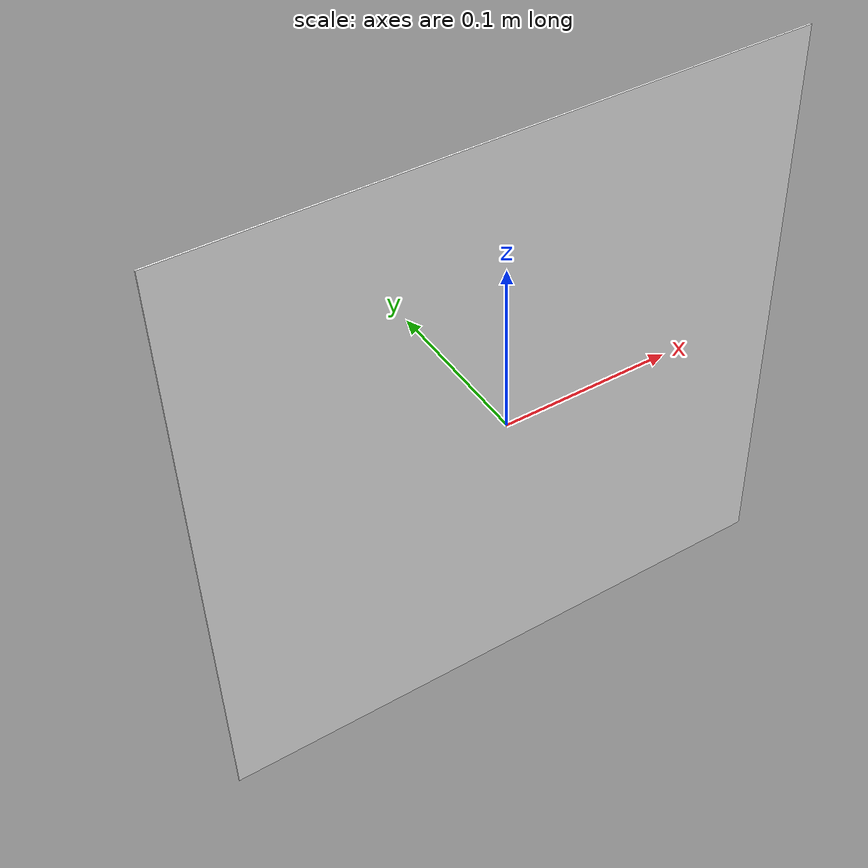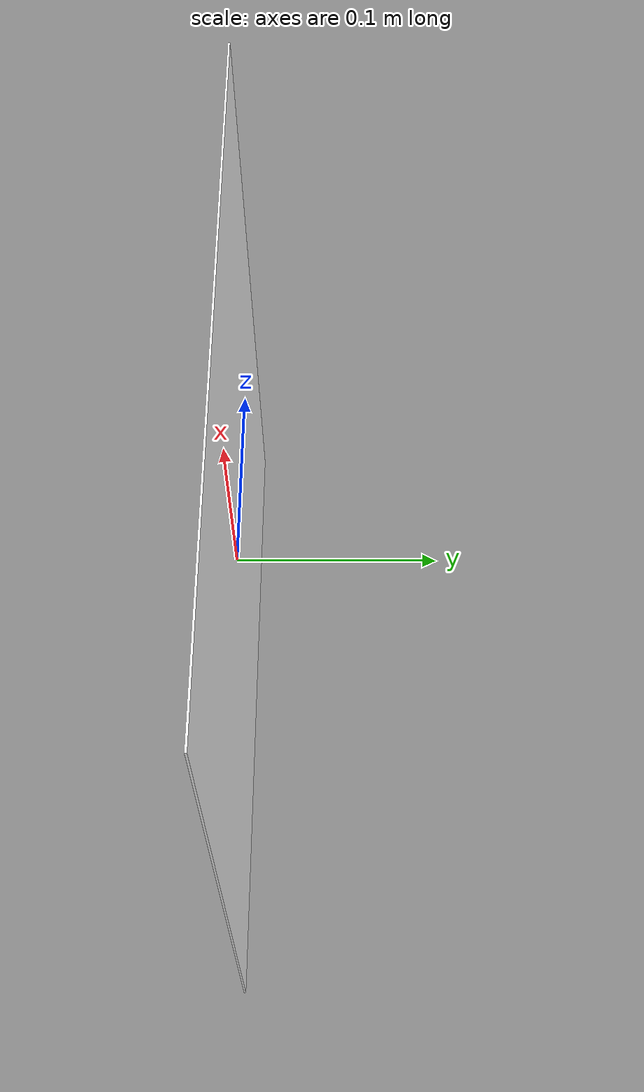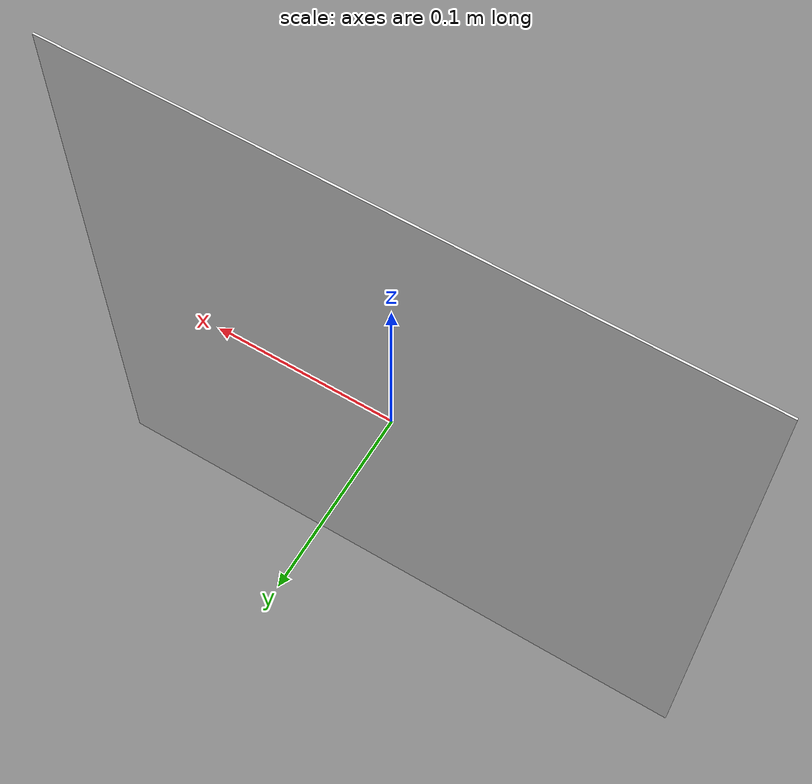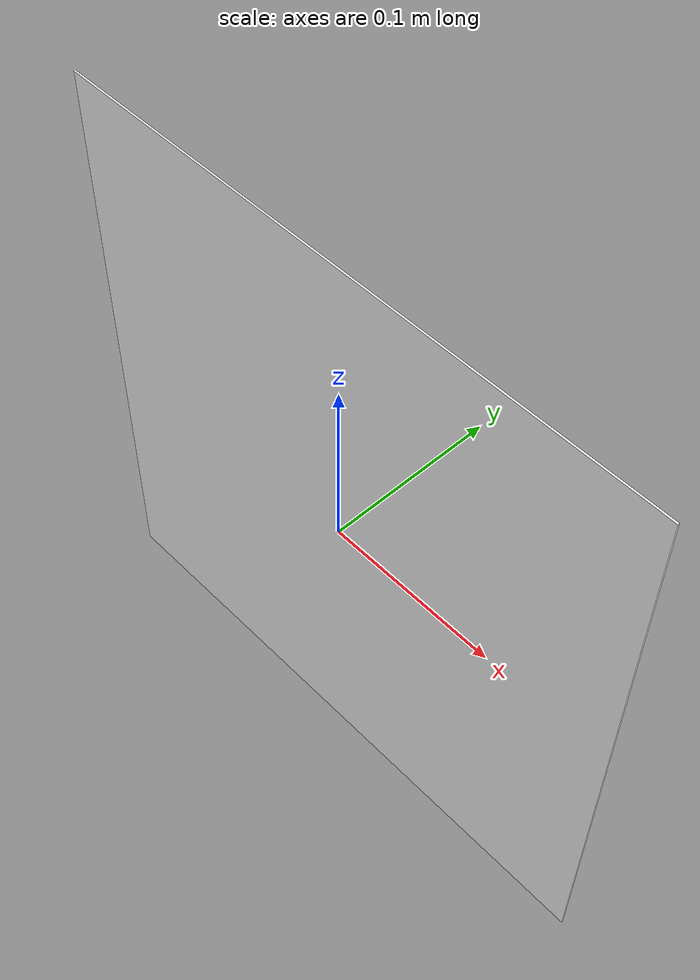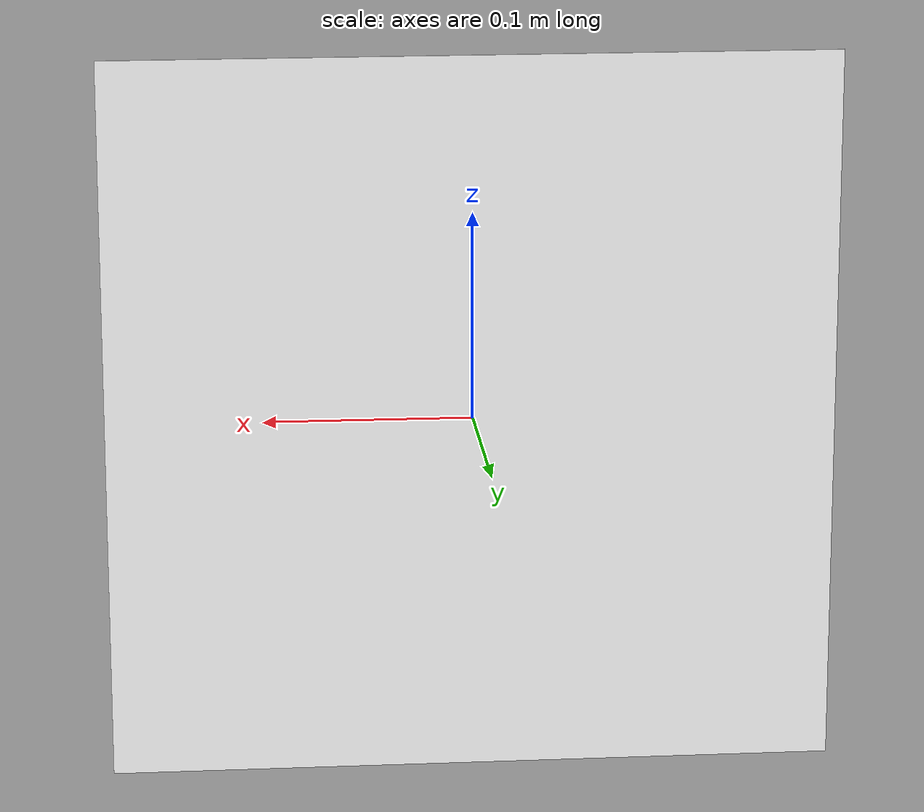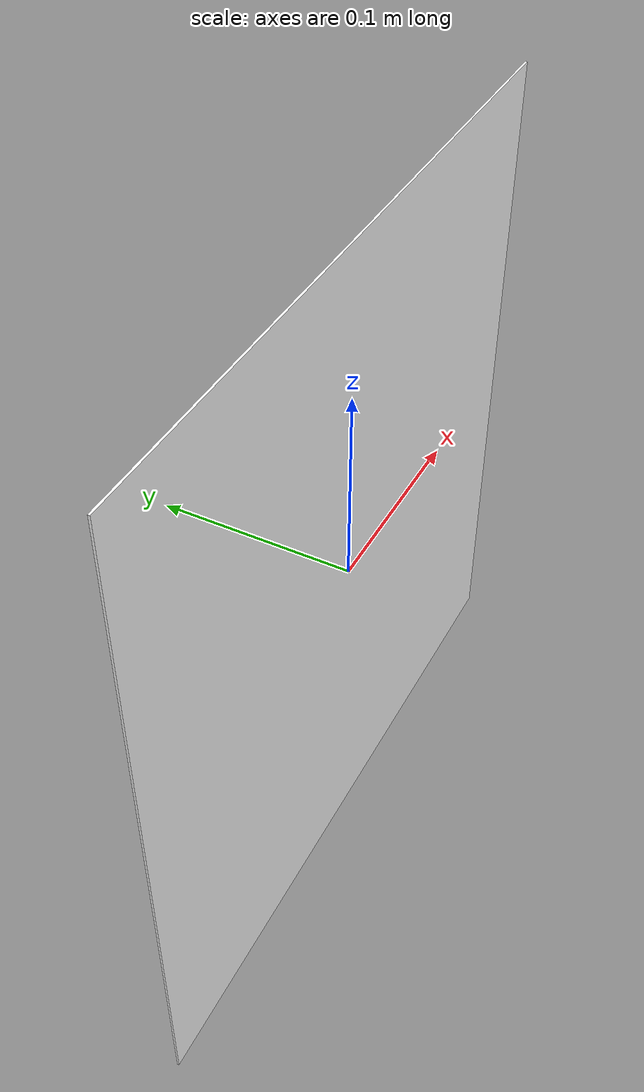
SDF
<?xml version='1.0'?>
<sdf version='1.5'>
  <model name='aruco_marker'>

    <link name='marker'>
      <pose frame=''>0 0 0 0 0 0</pose>
      <visual name='visual'>
        <geometry>
          <box>
            <size>0.35 0.001 0.35</size>
          </box>
        </geometry>
        <material>
          <ambient>1 1 1 1</ambient>
          <diffuse>1 1 1 1</diffuse>
          <specular>0.1 0.1 0.1 1</specular>

          <pbr>
            <metal>
              <!-- Texture path will be specified in mission.sdf -->
              <albedo_map>aruco_marker_texture.png</albedo_map>
            </metal>
          </pbr>
        </material>
        <pose frame=''>0 0 0 0 -0 0</pose>
        <cast_shadows>1</cast_shadows>
        <transparency>0</transparency>
      </visual>
      <collision name='collision'>
        <laser_retro>0</laser_retro>
        <max_contacts>10</max_contacts>
        <pose frame=''>0 0 0 0 -0 0</pose>
        <geometry>
          <box>
            <size>0.35 0.35 0.00001</size>
          </box>
        </geometry>
      </collision>
    </link>

    <static>1</static>
    <allow_auto_disable>1</allow_auto_disable>

  </model>
</sdf>
